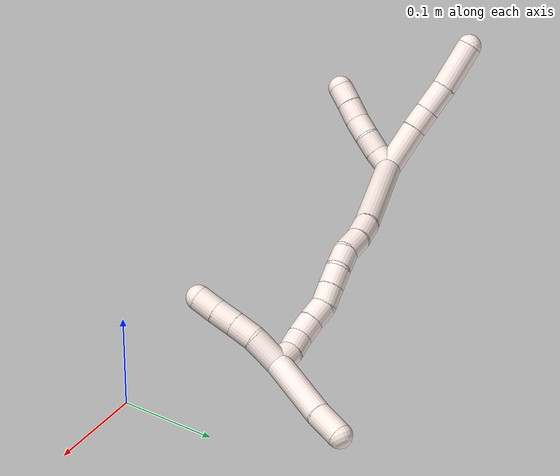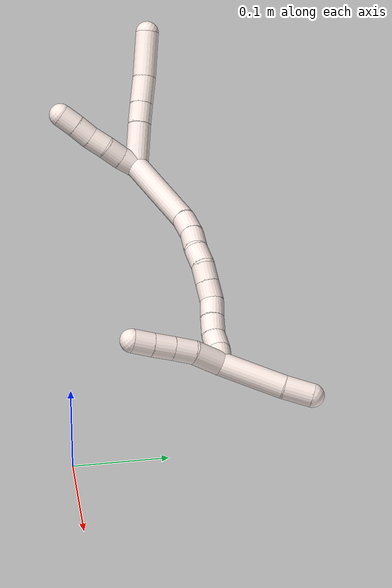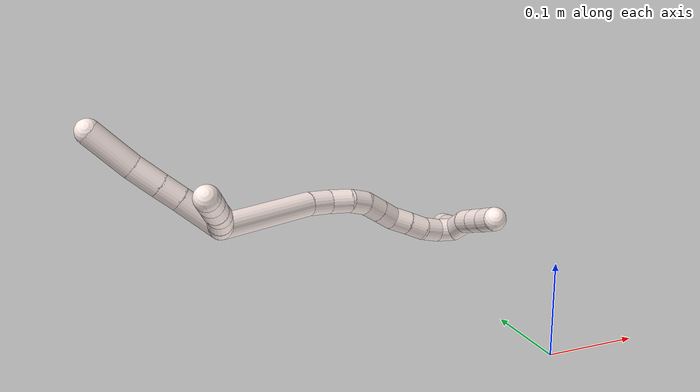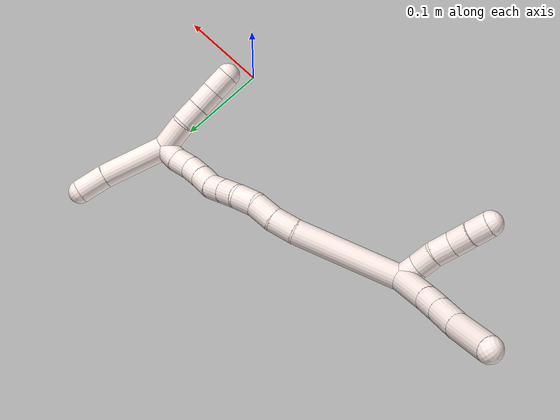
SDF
<sdf version="1.7">
 <world name="default">
  <model name="11">
   <static>0</static>
   <link name="11">
    <collision name="collision-cylinder-e_1_2_8">
     <pose>-0.011752 0.01612 0.012434 -0.913779 -0.523541 0.2619</pose>
     <geometry><cylinder><radius>0.0125</radius><length>0.047015</length></cylinder></geometry>
     <surface>
      <friction><ode><mu>1.16</mu><mu2>1.16</mu2><slip1>0</slip1><slip2>0</slip2></ode></friction>
      <contact><ode><kp>1e+06</kp><kd>1</kd><max_vel>0</max_vel><min_depth>0.001</min_depth></ode></contact>
     </surface>
    </collision>
    <visual name="visual-cylinder-e_1_2_8">
     <pose>-0.011752 0.01612 0.012434 -0.913779 -0.523541 0.2619</pose>
     <geometry><cylinder><radius>0.0125</radius><length>0.047015</length></cylinder></geometry>
     <material><ambient>1 0.933333 0.909804 1</ambient></material>
    </visual>
    <collision name="collision-cylinder-e_2_8_9">
     <pose>-0.02951 0.040106 0.030508 -0.948773 -0.55536 0.290674</pose>
     <geometry><cylinder><radius>0.0125</radius><length>0.02278</length></cylinder></geometry>
     <surface>
      <friction><ode><mu>1.16</mu><mu2>1.16</mu2><slip1>0</slip1><slip2>0</slip2></ode></friction>
      <contact><ode><kp>1e+06</kp><kd>1</kd><max_vel>0</max_vel><min_depth>0.001</min_depth></ode></contact>
     </surface>
    </collision>
    <visual name="visual-cylinder-e_2_8_9">
     <pose>-0.02951 0.040106 0.030508 -0.948773 -0.55536 0.290674</pose>
     <geometry><cylinder><radius>0.0125</radius><length>0.02278</length></cylinder></geometry>
     <material><ambient>1 0.933333 0.909804 1</ambient></material>
    </visual>
    <collision name="collision-cylinder-e_3_9_10">
     <pose>-0.043232 0.058602 0.043478 -0.967037 -0.538641 0.287874</pose>
     <geometry><cylinder><radius>0.0125</radius><length>0.030086</length></cylinder></geometry>
     <surface>
      <friction><ode><mu>1.16</mu><mu2>1.16</mu2><slip1>0</slip1><slip2>0</slip2></ode></friction>
      <contact><ode><kp>1e+06</kp><kd>1</kd><max_vel>0</max_vel><min_depth>0.001</min_depth></ode></contact>
     </surface>
    </collision>
    <visual name="visual-cylinder-e_3_9_10">
     <pose>-0.043232 0.058602 0.043478 -0.967037 -0.538641 0.287874</pose>
     <geometry><cylinder><radius>0.0125</radius><length>0.030086</length></cylinder></geometry>
     <material><ambient>1 0.933333 0.909804 1</ambient></material>
    </visual>
    <collision name="collision-cylinder-e_4_10_6">
     <pose>-0.062123 0.086945 0.064571 -0.910269 -0.46216 0.229287</pose>
     <geometry><cylinder><radius>0.0125</radius><length>0.050119</length></cylinder></geometry>
     <surface>
      <friction><ode><mu>1.16</mu><mu2>1.16</mu2><slip1>0</slip1><slip2>0</slip2></ode></friction>
      <contact><ode><kp>1e+06</kp><kd>1</kd><max_vel>0</max_vel><min_depth>0.001</min_depth></ode></contact>
     </surface>
    </collision>
    <visual name="visual-cylinder-e_4_10_6">
     <pose>-0.062123 0.086945 0.064571 -0.910269 -0.46216 0.229287</pose>
     <geometry><cylinder><radius>0.0125</radius><length>0.050119</length></cylinder></geometry>
     <material><ambient>1 0.933333 0.909804 1</ambient></material>
    </visual>
    <collision name="collision-cylinder-e_1_2_11">
     <pose>0.000265 -0.002247 0.009741 0.226703 0.02655 0.003023</pose>
     <geometry><cylinder><radius>0.0125</radius><length>0.02</length></cylinder></geometry>
     <surface>
      <friction><ode><mu>1.16</mu><mu2>1.16</mu2><slip1>0</slip1><slip2>0</slip2></ode></friction>
      <contact><ode><kp>1e+06</kp><kd>1</kd><max_vel>0</max_vel><min_depth>0.001</min_depth></ode></contact>
     </surface>
    </collision>
    <visual name="visual-cylinder-e_1_2_11">
     <pose>0.000265 -0.002247 0.009741 0.226703 0.02655 0.003023</pose>
     <geometry><cylinder><radius>0.0125</radius><length>0.02</length></cylinder></geometry>
     <material><ambient>1 0.933333 0.909804 1</ambient></material>
    </visual>
    <collision name="collision-cylinder-e_2_11_12">
     <pose>0.001098 -0.005495 0.029415 0.100482 0.056743 0.002854</pose>
     <geometry><cylinder><radius>0.0125</radius><length>0.02</length></cylinder></geometry>
     <surface>
      <friction><ode><mu>1.16</mu><mu2>1.16</mu2><slip1>0</slip1><slip2>0</slip2></ode></friction>
      <contact><ode><kp>1e+06</kp><kd>1</kd><max_vel>0</max_vel><min_depth>0.001</min_depth></ode></contact>
     </surface>
    </collision>
    <visual name="visual-cylinder-e_2_11_12">
     <pose>0.001098 -0.005495 0.029415 0.100482 0.056743 0.002854</pose>
     <geometry><cylinder><radius>0.0125</radius><length>0.02</length></cylinder></geometry>
     <material><ambient>1 0.933333 0.909804 1</ambient></material>
    </visual>
    <collision name="collision-cylinder-e_3_12_13">
     <pose>0.000626 -0.008312 0.049127 0.183558 -0.104127 -0.009592</pose>
     <geometry><cylinder><radius>0.0125</radius><length>0.02</length></cylinder></geometry>
     <surface>
      <friction><ode><mu>1.16</mu><mu2>1.16</mu2><slip1>0</slip1><slip2>0</slip2></ode></friction>
      <contact><ode><kp>1e+06</kp><kd>1</kd><max_vel>0</max_vel><min_depth>0.001</min_depth></ode></contact>
     </surface>
    </collision>
    <visual name="visual-cylinder-e_3_12_13">
     <pose>0.000626 -0.008312 0.049127 0.183558 -0.104127 -0.009592</pose>
     <geometry><cylinder><radius>0.0125</radius><length>0.02</length></cylinder></geometry>
     <material><ambient>1 0.933333 0.909804 1</ambient></material>
    </visual>
    <collision name="collision-cylinder-e_4_13_14">
     <pose>-0.001133 -0.010689 0.068864 0.056271 -0.071976 -0.002027</pose>
     <geometry><cylinder><radius>0.0125</radius><length>0.02</length></cylinder></geometry>
     <surface>
      <friction><ode><mu>1.16</mu><mu2>1.16</mu2><slip1>0</slip1><slip2>0</slip2></ode></friction>
      <contact><ode><kp>1e+06</kp><kd>1</kd><max_vel>0</max_vel><min_depth>0.001</min_depth></ode></contact>
     </surface>
    </collision>
    <visual name="visual-cylinder-e_4_13_14">
     <pose>-0.001133 -0.010689 0.068864 0.056271 -0.071976 -0.002027</pose>
     <geometry><cylinder><radius>0.0125</radius><length>0.02</length></cylinder></geometry>
     <material><ambient>1 0.933333 0.909804 1</ambient></material>
    </visual>
    <collision name="collision-cylinder-e_5_14_5">
     <pose>-0.002733 -0.01238 0.088719 0.113754 -0.088244 -0.005028</pose>
     <geometry><cylinder><radius>0.0125</radius><length>0.02</length></cylinder></geometry>
     <surface>
      <friction><ode><mu>1.16</mu><mu2>1.16</mu2><slip1>0</slip1><slip2>0</slip2></ode></friction>
      <contact><ode><kp>1e+06</kp><kd>1</kd><max_vel>0</max_vel><min_depth>0.001</min_depth></ode></contact>
     </surface>
    </collision>
    <visual name="visual-cylinder-e_5_14_5">
     <pose>-0.002733 -0.01238 0.088719 0.113754 -0.088244 -0.005028</pose>
     <geometry><cylinder><radius>0.0125</radius><length>0.02</length></cylinder></geometry>
     <material><ambient>1 0.933333 0.909804 1</ambient></material>
    </visual>
    <collision name="collision-cylinder-e_1_2_15">
     <pose>0.046483 0.004305 -0.028383 -2.99107 1.01754 -2.87283</pose>
     <geometry><cylinder><radius>0.0125</radius><length>0.109266</length></cylinder></geometry>
     <surface>
      <friction><ode><mu>1.16</mu><mu2>1.16</mu2><slip1>0</slip1><slip2>0</slip2></ode></friction>
      <contact><ode><kp>1e+06</kp><kd>1</kd><max_vel>0</max_vel><min_depth>0.001</min_depth></ode></contact>
     </surface>
    </collision>
    <visual name="visual-cylinder-e_1_2_15">
     <pose>0.046483 0.004305 -0.028383 -2.99107 1.01754 -2.87283</pose>
     <geometry><cylinder><radius>0.0125</radius><length>0.109266</length></cylinder></geometry>
     <material><ambient>1 0.933333 0.909804 1</ambient></material>
    </visual>
    <collision name="collision-cylinder-e_2_15_16">
     <pose>0.103708 0.007605 -0.062938 2.98031 1.0436 2.8623</pose>
     <geometry><cylinder><radius>0.0125</radius><length>0.024861</length></cylinder></geometry>
     <surface>
      <friction><ode><mu>1.16</mu><mu2>1.16</mu2><slip1>0</slip1><slip2>0</slip2></ode></friction>
      <contact><ode><kp>1e+06</kp><kd>1</kd><max_vel>0</max_vel><min_depth>0.001</min_depth></ode></contact>
     </surface>
    </collision>
    <visual name="visual-cylinder-e_2_15_16">
     <pose>0.103708 0.007605 -0.062938 2.98031 1.0436 2.8623</pose>
     <geometry><cylinder><radius>0.0125</radius><length>0.024861</length></cylinder></geometry>
     <material><ambient>1 0.933333 0.909804 1</ambient></material>
    </visual>
    <collision name="collision-cylinder-e_3_16_17">
     <pose>0.125358 0.004105 -0.07362 2.63606 1.1294 2.36732</pose>
     <geometry><cylinder><radius>0.0125</radius><length>0.024126</length></cylinder></geometry>
     <surface>
      <friction><ode><mu>1.16</mu><mu2>1.16</mu2><slip1>0</slip1><slip2>0</slip2></ode></friction>
      <contact><ode><kp>1e+06</kp><kd>1</kd><max_vel>0</max_vel><min_depth>0.001</min_depth></ode></contact>
     </surface>
    </collision>
    <visual name="visual-cylinder-e_3_16_17">
     <pose>0.125358 0.004105 -0.07362 2.63606 1.1294 2.36732</pose>
     <geometry><cylinder><radius>0.0125</radius><length>0.024126</length></cylinder></geometry>
     <material><ambient>1 0.933333 0.909804 1</ambient></material>
    </visual>
    <collision name="collision-cylinder-e_4_17_18">
     <pose>0.144468 -0.000708 -0.084814 2.80786 0.859091 2.43689</pose>
     <geometry><cylinder><radius>0.0125</radius><length>0.021666</length></cylinder></geometry>
     <surface>
      <friction><ode><mu>1.16</mu><mu2>1.16</mu2><slip1>0</slip1><slip2>0</slip2></ode></friction>
      <contact><ode><kp>1e+06</kp><kd>1</kd><max_vel>0</max_vel><min_depth>0.001</min_depth></ode></contact>
     </surface>
    </collision>
    <visual name="visual-cylinder-e_4_17_18">
     <pose>0.144468 -0.000708 -0.084814 2.80786 0.859091 2.43689</pose>
     <geometry><cylinder><radius>0.0125</radius><length>0.021666</length></cylinder></geometry>
     <material><ambient>1 0.933333 0.909804 1</ambient></material>
    </visual>
    <collision name="collision-cylinder-e_5_18_19">
     <pose>0.158462 -0.007409 -0.098382 2.57451 0.617152 1.66044</pose>
     <geometry><cylinder><radius>0.0125</radius><length>0.020015</length></cylinder></geometry>
     <surface>
      <friction><ode><mu>1.16</mu><mu2>1.16</mu2><slip1>0</slip1><slip2>0</slip2></ode></friction>
      <contact><ode><kp>1e+06</kp><kd>1</kd><max_vel>0</max_vel><min_depth>0.001</min_depth></ode></contact>
     </surface>
    </collision>
    <visual name="visual-cylinder-e_5_18_19">
     <pose>0.158462 -0.007409 -0.098382 2.57451 0.617152 1.66044</pose>
     <geometry><cylinder><radius>0.0125</radius><length>0.020015</length></cylinder></geometry>
     <material><ambient>1 0.933333 0.909804 1</ambient></material>
    </visual>
    <collision name="collision-cylinder-e_6_19_20">
     <pose>0.169955 -0.016169 -0.112243 2.58138 0.605564 1.65314</pose>
     <geometry><cylinder><radius>0.0125</radius><length>0.020033</length></cylinder></geometry>
     <surface>
      <friction><ode><mu>1.16</mu><mu2>1.16</mu2><slip1>0</slip1><slip2>0</slip2></ode></friction>
      <contact><ode><kp>1e+06</kp><kd>1</kd><max_vel>0</max_vel><min_depth>0.001</min_depth></ode></contact>
     </surface>
    </collision>
    <visual name="visual-cylinder-e_6_19_20">
     <pose>0.169955 -0.016169 -0.112243 2.58138 0.605564 1.65314</pose>
     <geometry><cylinder><radius>0.0125</radius><length>0.020033</length></cylinder></geometry>
     <material><ambient>1 0.933333 0.909804 1</ambient></material>
    </visual>
    <collision name="collision-cylinder-e_7_20_21">
     <pose>0.183035 -0.025597 -0.123709 2.29734 0.82918 1.5505</pose>
     <geometry><cylinder><radius>0.0125</radius><length>0.02001</length></cylinder></geometry>
     <surface>
      <friction><ode><mu>1.16</mu><mu2>1.16</mu2><slip1>0</slip1><slip2>0</slip2></ode></friction>
      <contact><ode><kp>1e+06</kp><kd>1</kd><max_vel>0</max_vel><min_depth>0.001</min_depth></ode></contact>
     </surface>
    </collision>
    <visual name="visual-cylinder-e_7_20_21">
     <pose>0.183035 -0.025597 -0.123709 2.29734 0.82918 1.5505</pose>
     <geometry><cylinder><radius>0.0125</radius><length>0.02001</length></cylinder></geometry>
     <material><ambient>1 0.933333 0.909804 1</ambient></material>
    </visual>
    <collision name="collision-cylinder-e_8_21_22">
     <pose>0.197592 -0.03554 -0.133161 2.36349 0.800354 1.60214</pose>
     <geometry><cylinder><radius>0.0125</radius><length>0.020011</length></cylinder></geometry>
     <surface>
      <friction><ode><mu>1.16</mu><mu2>1.16</mu2><slip1>0</slip1><slip2>0</slip2></ode></friction>
      <contact><ode><kp>1e+06</kp><kd>1</kd><max_vel>0</max_vel><min_depth>0.001</min_depth></ode></contact>
     </surface>
    </collision>
    <visual name="visual-cylinder-e_8_21_22">
     <pose>0.197592 -0.03554 -0.133161 2.36349 0.800354 1.60214</pose>
     <geometry><cylinder><radius>0.0125</radius><length>0.020011</length></cylinder></geometry>
     <material><ambient>1 0.933333 0.909804 1</ambient></material>
    </visual>
    <collision name="collision-cylinder-e_9_22_23">
     <pose>0.212739 -0.043012 -0.143591 2.70063 0.921703 2.29356</pose>
     <geometry><cylinder><radius>0.0125</radius><length>0.020001</length></cylinder></geometry>
     <surface>
      <friction><ode><mu>1.16</mu><mu2>1.16</mu2><slip1>0</slip1><slip2>0</slip2></ode></friction>
      <contact><ode><kp>1e+06</kp><kd>1</kd><max_vel>0</max_vel><min_depth>0.001</min_depth></ode></contact>
     </surface>
    </collision>
    <visual name="visual-cylinder-e_9_22_23">
     <pose>0.212739 -0.043012 -0.143591 2.70063 0.921703 2.29356</pose>
     <geometry><cylinder><radius>0.0125</radius><length>0.020001</length></cylinder></geometry>
     <material><ambient>1 0.933333 0.909804 1</ambient></material>
    </visual>
    <collision name="collision-cylinder-e_10_23_1">
     <pose>0.229858 -0.048165 -0.152176 2.45156 1.15484 2.13339</pose>
     <geometry><cylinder><radius>0.0125</radius><length>0.020011</length></cylinder></geometry>
     <surface>
      <friction><ode><mu>1.16</mu><mu2>1.16</mu2><slip1>0</slip1><slip2>0</slip2></ode></friction>
      <contact><ode><kp>1e+06</kp><kd>1</kd><max_vel>0</max_vel><min_depth>0.001</min_depth></ode></contact>
     </surface>
    </collision>
    <visual name="visual-cylinder-e_10_23_1">
     <pose>0.229858 -0.048165 -0.152176 2.45156 1.15484 2.13339</pose>
     <geometry><cylinder><radius>0.0125</radius><length>0.020011</length></cylinder></geometry>
     <material><ambient>1 0.933333 0.909804 1</ambient></material>
    </visual>
    <collision name="collision-cylinder-e_1_1_24">
     <pose>0.242948 -0.054475 -0.140037 0.240167 0.245631 0.029787</pose>
     <geometry><cylinder><radius>0.0125</radius><length>0.032387</length></cylinder></geometry>
     <surface>
      <friction><ode><mu>1.16</mu><mu2>1.16</mu2><slip1>0</slip1><slip2>0</slip2></ode></friction>
      <contact><ode><kp>1e+06</kp><kd>1</kd><max_vel>0</max_vel><min_depth>0.001</min_depth></ode></contact>
     </surface>
    </collision>
    <visual name="visual-cylinder-e_1_1_24">
     <pose>0.242948 -0.054475 -0.140037 0.240167 0.245631 0.029787</pose>
     <geometry><cylinder><radius>0.0125</radius><length>0.032387</length></cylinder></geometry>
     <material><ambient>1 0.933333 0.909804 1</ambient></material>
    </visual>
    <collision name="collision-cylinder-e_2_24_25">
     <pose>0.248944 -0.063359 -0.114722 0.47304 0.180165 0.043536</pose>
     <geometry><cylinder><radius>0.0125</radius><length>0.02297</length></cylinder></geometry>
     <surface>
      <friction><ode><mu>1.16</mu><mu2>1.16</mu2><slip1>0</slip1><slip2>0</slip2></ode></friction>
      <contact><ode><kp>1e+06</kp><kd>1</kd><max_vel>0</max_vel><min_depth>0.001</min_depth></ode></contact>
     </surface>
    </collision>
    <visual name="visual-cylinder-e_2_24_25">
     <pose>0.248944 -0.063359 -0.114722 0.47304 0.180165 0.043536</pose>
     <geometry><cylinder><radius>0.0125</radius><length>0.02297</length></cylinder></geometry>
     <material><ambient>1 0.933333 0.909804 1</ambient></material>
    </visual>
    <collision name="collision-cylinder-e_3_25_26">
     <pose>0.253177 -0.073694 -0.094972 0.491371 0.195342 0.049129</pose>
     <geometry><cylinder><radius>0.0125</radius><length>0.022411</length></cylinder></geometry>
     <surface>
      <friction><ode><mu>1.16</mu><mu2>1.16</mu2><slip1>0</slip1><slip2>0</slip2></ode></friction>
      <contact><ode><kp>1e+06</kp><kd>1</kd><max_vel>0</max_vel><min_depth>0.001</min_depth></ode></contact>
     </surface>
    </collision>
    <visual name="visual-cylinder-e_3_25_26">
     <pose>0.253177 -0.073694 -0.094972 0.491371 0.195342 0.049129</pose>
     <geometry><cylinder><radius>0.0125</radius><length>0.022411</length></cylinder></geometry>
     <material><ambient>1 0.933333 0.909804 1</ambient></material>
    </visual>
    <collision name="collision-cylinder-e_4_26_4">
     <pose>0.257369 -0.083779 -0.075508 0.464686 0.182438 0.043281</pose>
     <geometry><cylinder><radius>0.0125</radius><length>0.022231</length></cylinder></geometry>
     <surface>
      <friction><ode><mu>1.16</mu><mu2>1.16</mu2><slip1>0</slip1><slip2>0</slip2></ode></friction>
      <contact><ode><kp>1e+06</kp><kd>1</kd><max_vel>0</max_vel><min_depth>0.001</min_depth></ode></contact>
     </surface>
    </collision>
    <visual name="visual-cylinder-e_4_26_4">
     <pose>0.257369 -0.083779 -0.075508 0.464686 0.182438 0.043281</pose>
     <geometry><cylinder><radius>0.0125</radius><length>0.022231</length></cylinder></geometry>
     <material><ambient>1 0.933333 0.909804 1</ambient></material>
    </visual>
    <collision name="collision-cylinder-e_1_1_27">
     <pose>0.245549 -0.036725 -0.186358 -2.7178 0.189552 -0.832166</pose>
     <geometry><cylinder><radius>0.0125</radius><length>0.0694</length></cylinder></geometry>
     <surface>
      <friction><ode><mu>1.16</mu><mu2>1.16</mu2><slip1>0</slip1><slip2>0</slip2></ode></friction>
      <contact><ode><kp>1e+06</kp><kd>1</kd><max_vel>0</max_vel><min_depth>0.001</min_depth></ode></contact>
     </surface>
    </collision>
    <visual name="visual-cylinder-e_1_1_27">
     <pose>0.245549 -0.036725 -0.186358 -2.7178 0.189552 -0.832166</pose>
     <geometry><cylinder><radius>0.0125</radius><length>0.0694</length></cylinder></geometry>
     <material><ambient>1 0.933333 0.909804 1</ambient></material>
    </visual>
    <collision name="collision-cylinder-e_2_27_3">
     <pose>0.25329 -0.015935 -0.231086 -2.68123 0.078746 -0.333098</pose>
     <geometry><cylinder><radius>0.0125</radius><length>0.0306</length></cylinder></geometry>
     <surface>
      <friction><ode><mu>1.16</mu><mu2>1.16</mu2><slip1>0</slip1><slip2>0</slip2></ode></friction>
      <contact><ode><kp>1e+06</kp><kd>1</kd><max_vel>0</max_vel><min_depth>0.001</min_depth></ode></contact>
     </surface>
    </collision>
    <visual name="visual-cylinder-e_2_27_3">
     <pose>0.25329 -0.015935 -0.231086 -2.68123 0.078746 -0.333098</pose>
     <geometry><cylinder><radius>0.0125</radius><length>0.0306</length></cylinder></geometry>
     <material><ambient>1 0.933333 0.909804 1</ambient></material>
    </visual>
    <collision name="collision-sphere-3">
     <pose>0.254494 -0.009158 -0.244751 0 -0 0</pose>
     <geometry><sphere><radius>0.0125</radius></sphere></geometry>
     <surface>
      <friction><ode><mu>1.16</mu><mu2>1.16</mu2><slip1>0</slip1><slip2>0</slip2></ode></friction>
      <contact><ode><kp>1e+06</kp><kd>1</kd><max_vel>0</max_vel><min_depth>0.001</min_depth></ode></contact>
     </surface>
    </collision>
    <visual name="visual-sphere-3">
     <pose>0.254494 -0.009158 -0.244751 0 -0 0</pose>
     <geometry><sphere><radius>0.0125</radius></sphere></geometry>
     <material><ambient>1 0.933333 0.909804 1</ambient></material>
    </visual>
    <collision name="collision-sphere-27">
     <pose>0.252087 -0.022711 -0.217421 0 -0 0</pose>
     <geometry><sphere><radius>0.0125</radius></sphere></geometry>
     <surface>
      <friction><ode><mu>1.16</mu><mu2>1.16</mu2><slip1>0</slip1><slip2>0</slip2></ode></friction>
      <contact><ode><kp>1e+06</kp><kd>1</kd><max_vel>0</max_vel><min_depth>0.001</min_depth></ode></contact>
     </surface>
    </collision>
    <visual name="visual-sphere-27">
     <pose>0.252087 -0.022711 -0.217421 0 -0 0</pose>
     <geometry><sphere><radius>0.0125</radius></sphere></geometry>
     <material><ambient>1 0.933333 0.909804 1</ambient></material>
    </visual>
    <collision name="collision-sphere-4">
     <pose>0.259386 -0.088678 -0.065736 0 -0 0</pose>
     <geometry><sphere><radius>0.0125</radius></sphere></geometry>
     <surface>
      <friction><ode><mu>1.16</mu><mu2>1.16</mu2><slip1>0</slip1><slip2>0</slip2></ode></friction>
      <contact><ode><kp>1e+06</kp><kd>1</kd><max_vel>0</max_vel><min_depth>0.001</min_depth></ode></contact>
     </surface>
    </collision>
    <visual name="visual-sphere-4">
     <pose>0.259386 -0.088678 -0.065736 0 -0 0</pose>
     <geometry><sphere><radius>0.0125</radius></sphere></geometry>
     <material><ambient>1 0.933333 0.909804 1</ambient></material>
    </visual>
    <collision name="collision-sphere-26">
     <pose>0.255352 -0.07888 -0.08528 0 -0 0</pose>
     <geometry><sphere><radius>0.0125</radius></sphere></geometry>
     <surface>
      <friction><ode><mu>1.16</mu><mu2>1.16</mu2><slip1>0</slip1><slip2>0</slip2></ode></friction>
      <contact><ode><kp>1e+06</kp><kd>1</kd><max_vel>0</max_vel><min_depth>0.001</min_depth></ode></contact>
     </surface>
    </collision>
    <visual name="visual-sphere-26">
     <pose>0.255352 -0.07888 -0.08528 0 -0 0</pose>
     <geometry><sphere><radius>0.0125</radius></sphere></geometry>
     <material><ambient>1 0.933333 0.909804 1</ambient></material>
    </visual>
    <collision name="collision-sphere-25">
     <pose>0.251002 -0.068507 -0.104663 0 -0 0</pose>
     <geometry><sphere><radius>0.0125</radius></sphere></geometry>
     <surface>
      <friction><ode><mu>1.16</mu><mu2>1.16</mu2><slip1>0</slip1><slip2>0</slip2></ode></friction>
      <contact><ode><kp>1e+06</kp><kd>1</kd><max_vel>0</max_vel><min_depth>0.001</min_depth></ode></contact>
     </surface>
    </collision>
    <visual name="visual-sphere-25">
     <pose>0.251002 -0.068507 -0.104663 0 -0 0</pose>
     <geometry><sphere><radius>0.0125</radius></sphere></geometry>
     <material><ambient>1 0.933333 0.909804 1</ambient></material>
    </visual>
    <collision name="collision-sphere-24">
     <pose>0.246886 -0.058211 -0.12478 0 -0 0</pose>
     <geometry><sphere><radius>0.0125</radius></sphere></geometry>
     <surface>
      <friction><ode><mu>1.16</mu><mu2>1.16</mu2><slip1>0</slip1><slip2>0</slip2></ode></friction>
      <contact><ode><kp>1e+06</kp><kd>1</kd><max_vel>0</max_vel><min_depth>0.001</min_depth></ode></contact>
     </surface>
    </collision>
    <visual name="visual-sphere-24">
     <pose>0.246886 -0.058211 -0.12478 0 -0 0</pose>
     <geometry><sphere><radius>0.0125</radius></sphere></geometry>
     <material><ambient>1 0.933333 0.909804 1</ambient></material>
    </visual>
    <collision name="collision-sphere-1">
     <pose>0.23901 -0.050739 -0.155294 0 -0 0</pose>
     <geometry><sphere><radius>0.0125</radius></sphere></geometry>
     <surface>
      <friction><ode><mu>1.16</mu><mu2>1.16</mu2><slip1>0</slip1><slip2>0</slip2></ode></friction>
      <contact><ode><kp>1e+06</kp><kd>1</kd><max_vel>0</max_vel><min_depth>0.001</min_depth></ode></contact>
     </surface>
    </collision>
    <visual name="visual-sphere-1">
     <pose>0.23901 -0.050739 -0.155294 0 -0 0</pose>
     <geometry><sphere><radius>0.0125</radius></sphere></geometry>
     <material><ambient>1 0.933333 0.909804 1</ambient></material>
    </visual>
    <collision name="collision-sphere-23">
     <pose>0.220706 -0.045592 -0.149058 0 -0 0</pose>
     <geometry><sphere><radius>0.0125</radius></sphere></geometry>
     <surface>
      <friction><ode><mu>1.16</mu><mu2>1.16</mu2><slip1>0</slip1><slip2>0</slip2></ode></friction>
      <contact><ode><kp>1e+06</kp><kd>1</kd><max_vel>0</max_vel><min_depth>0.001</min_depth></ode></contact>
     </surface>
    </collision>
    <visual name="visual-sphere-23">
     <pose>0.220706 -0.045592 -0.149058 0 -0 0</pose>
     <geometry><sphere><radius>0.0125</radius></sphere></geometry>
     <material><ambient>1 0.933333 0.909804 1</ambient></material>
    </visual>
    <collision name="collision-sphere-22">
     <pose>0.204772 -0.040431 -0.138125 0 -0 0</pose>
     <geometry><sphere><radius>0.0125</radius></sphere></geometry>
     <surface>
      <friction><ode><mu>1.16</mu><mu2>1.16</mu2><slip1>0</slip1><slip2>0</slip2></ode></friction>
      <contact><ode><kp>1e+06</kp><kd>1</kd><max_vel>0</max_vel><min_depth>0.001</min_depth></ode></contact>
     </surface>
    </collision>
    <visual name="visual-sphere-22">
     <pose>0.204772 -0.040431 -0.138125 0 -0 0</pose>
     <geometry><sphere><radius>0.0125</radius></sphere></geometry>
     <material><ambient>1 0.933333 0.909804 1</ambient></material>
    </visual>
    <collision name="collision-sphere-21">
     <pose>0.190412 -0.030649 -0.128198 0 -0 0</pose>
     <geometry><sphere><radius>0.0125</radius></sphere></geometry>
     <surface>
      <friction><ode><mu>1.16</mu><mu2>1.16</mu2><slip1>0</slip1><slip2>0</slip2></ode></friction>
      <contact><ode><kp>1e+06</kp><kd>1</kd><max_vel>0</max_vel><min_depth>0.001</min_depth></ode></contact>
     </surface>
    </collision>
    <visual name="visual-sphere-21">
     <pose>0.190412 -0.030649 -0.128198 0 -0 0</pose>
     <geometry><sphere><radius>0.0125</radius></sphere></geometry>
     <material><ambient>1 0.933333 0.909804 1</ambient></material>
    </visual>
    <collision name="collision-sphere-11">
     <pose>0.000531 -0.004494 0.019481 0 -0 0</pose>
     <geometry><sphere><radius>0.0125</radius></sphere></geometry>
     <surface>
      <friction><ode><mu>1.16</mu><mu2>1.16</mu2><slip1>0</slip1><slip2>0</slip2></ode></friction>
      <contact><ode><kp>1e+06</kp><kd>1</kd><max_vel>0</max_vel><min_depth>0.001</min_depth></ode></contact>
     </surface>
    </collision>
    <visual name="visual-sphere-11">
     <pose>0.000531 -0.004494 0.019481 0 -0 0</pose>
     <geometry><sphere><radius>0.0125</radius></sphere></geometry>
     <material><ambient>1 0.933333 0.909804 1</ambient></material>
    </visual>
    <collision name="collision-sphere-6">
     <pose>-0.073296 0.104657 0.078333 0 -0 0</pose>
     <geometry><sphere><radius>0.0125</radius></sphere></geometry>
     <surface>
      <friction><ode><mu>1.16</mu><mu2>1.16</mu2><slip1>0</slip1><slip2>0</slip2></ode></friction>
      <contact><ode><kp>1e+06</kp><kd>1</kd><max_vel>0</max_vel><min_depth>0.001</min_depth></ode></contact>
     </surface>
    </collision>
    <visual name="visual-sphere-6">
     <pose>-0.073296 0.104657 0.078333 0 -0 0</pose>
     <geometry><sphere><radius>0.0125</radius></sphere></geometry>
     <material><ambient>1 0.933333 0.909804 1</ambient></material>
    </visual>
    <collision name="collision-sphere-10">
     <pose>-0.050949 0.069232 0.05081 0 -0 0</pose>
     <geometry><sphere><radius>0.0125</radius></sphere></geometry>
     <surface>
      <friction><ode><mu>1.16</mu><mu2>1.16</mu2><slip1>0</slip1><slip2>0</slip2></ode></friction>
      <contact><ode><kp>1e+06</kp><kd>1</kd><max_vel>0</max_vel><min_depth>0.001</min_depth></ode></contact>
     </surface>
    </collision>
    <visual name="visual-sphere-10">
     <pose>-0.050949 0.069232 0.05081 0 -0 0</pose>
     <geometry><sphere><radius>0.0125</radius></sphere></geometry>
     <material><ambient>1 0.933333 0.909804 1</ambient></material>
    </visual>
    <collision name="collision-sphere-9">
     <pose>-0.035516 0.047972 0.036147 0 -0 0</pose>
     <geometry><sphere><radius>0.0125</radius></sphere></geometry>
     <surface>
      <friction><ode><mu>1.16</mu><mu2>1.16</mu2><slip1>0</slip1><slip2>0</slip2></ode></friction>
      <contact><ode><kp>1e+06</kp><kd>1</kd><max_vel>0</max_vel><min_depth>0.001</min_depth></ode></contact>
     </surface>
    </collision>
    <visual name="visual-sphere-9">
     <pose>-0.035516 0.047972 0.036147 0 -0 0</pose>
     <geometry><sphere><radius>0.0125</radius></sphere></geometry>
     <material><ambient>1 0.933333 0.909804 1</ambient></material>
    </visual>
    <collision name="collision-sphere-2">
     <geometry><sphere><radius>0.0125</radius></sphere></geometry>
     <surface>
      <friction><ode><mu>1.16</mu><mu2>1.16</mu2><slip1>0</slip1><slip2>0</slip2></ode></friction>
      <contact><ode><kp>1e+06</kp><kd>1</kd><max_vel>0</max_vel><min_depth>0.001</min_depth></ode></contact>
     </surface>
    </collision>
    <visual name="visual-sphere-2">
     <geometry><sphere><radius>0.0125</radius></sphere></geometry>
     <material><ambient>1 0.933333 0.909804 1</ambient></material>
    </visual>
    <collision name="collision-sphere-19">
     <pose>0.164254 -0.011794 -0.105266 0 -0 0</pose>
     <geometry><sphere><radius>0.0125</radius></sphere></geometry>
     <surface>
      <friction><ode><mu>1.16</mu><mu2>1.16</mu2><slip1>0</slip1><slip2>0</slip2></ode></friction>
      <contact><ode><kp>1e+06</kp><kd>1</kd><max_vel>0</max_vel><min_depth>0.001</min_depth></ode></contact>
     </surface>
    </collision>
    <visual name="visual-sphere-19">
     <pose>0.164254 -0.011794 -0.105266 0 -0 0</pose>
     <geometry><sphere><radius>0.0125</radius></sphere></geometry>
     <material><ambient>1 0.933333 0.909804 1</ambient></material>
    </visual>
    <collision name="collision-sphere-8">
     <pose>-0.023505 0.032241 0.024868 0 -0 0</pose>
     <geometry><sphere><radius>0.0125</radius></sphere></geometry>
     <surface>
      <friction><ode><mu>1.16</mu><mu2>1.16</mu2><slip1>0</slip1><slip2>0</slip2></ode></friction>
      <contact><ode><kp>1e+06</kp><kd>1</kd><max_vel>0</max_vel><min_depth>0.001</min_depth></ode></contact>
     </surface>
    </collision>
    <visual name="visual-sphere-8">
     <pose>-0.023505 0.032241 0.024868 0 -0 0</pose>
     <geometry><sphere><radius>0.0125</radius></sphere></geometry>
     <material><ambient>1 0.933333 0.909804 1</ambient></material>
    </visual>
    <collision name="collision-sphere-12">
     <pose>0.001665 -0.006497 0.039348 0 -0 0</pose>
     <geometry><sphere><radius>0.0125</radius></sphere></geometry>
     <surface>
      <friction><ode><mu>1.16</mu><mu2>1.16</mu2><slip1>0</slip1><slip2>0</slip2></ode></friction>
      <contact><ode><kp>1e+06</kp><kd>1</kd><max_vel>0</max_vel><min_depth>0.001</min_depth></ode></contact>
     </surface>
    </collision>
    <visual name="visual-sphere-12">
     <pose>0.001665 -0.006497 0.039348 0 -0 0</pose>
     <geometry><sphere><radius>0.0125</radius></sphere></geometry>
     <material><ambient>1 0.933333 0.909804 1</ambient></material>
    </visual>
    <collision name="collision-sphere-13">
     <pose>-0.000414 -0.010128 0.058906 0 -0 0</pose>
     <geometry><sphere><radius>0.0125</radius></sphere></geometry>
     <surface>
      <friction><ode><mu>1.16</mu><mu2>1.16</mu2><slip1>0</slip1><slip2>0</slip2></ode></friction>
      <contact><ode><kp>1e+06</kp><kd>1</kd><max_vel>0</max_vel><min_depth>0.001</min_depth></ode></contact>
     </surface>
    </collision>
    <visual name="visual-sphere-13">
     <pose>-0.000414 -0.010128 0.058906 0 -0 0</pose>
     <geometry><sphere><radius>0.0125</radius></sphere></geometry>
     <material><ambient>1 0.933333 0.909804 1</ambient></material>
    </visual>
    <collision name="collision-sphere-14">
     <pose>-0.001852 -0.011249 0.078823 0 -0 0</pose>
     <geometry><sphere><radius>0.0125</radius></sphere></geometry>
     <surface>
      <friction><ode><mu>1.16</mu><mu2>1.16</mu2><slip1>0</slip1><slip2>0</slip2></ode></friction>
      <contact><ode><kp>1e+06</kp><kd>1</kd><max_vel>0</max_vel><min_depth>0.001</min_depth></ode></contact>
     </surface>
    </collision>
    <visual name="visual-sphere-14">
     <pose>-0.001852 -0.011249 0.078823 0 -0 0</pose>
     <geometry><sphere><radius>0.0125</radius></sphere></geometry>
     <material><ambient>1 0.933333 0.909804 1</ambient></material>
    </visual>
    <collision name="collision-sphere-5">
     <pose>-0.003614 -0.013511 0.098616 0 -0 0</pose>
     <geometry><sphere><radius>0.0125</radius></sphere></geometry>
     <surface>
      <friction><ode><mu>1.16</mu><mu2>1.16</mu2><slip1>0</slip1><slip2>0</slip2></ode></friction>
      <contact><ode><kp>1e+06</kp><kd>1</kd><max_vel>0</max_vel><min_depth>0.001</min_depth></ode></contact>
     </surface>
    </collision>
    <visual name="visual-sphere-5">
     <pose>-0.003614 -0.013511 0.098616 0 -0 0</pose>
     <geometry><sphere><radius>0.0125</radius></sphere></geometry>
     <material><ambient>1 0.933333 0.909804 1</ambient></material>
    </visual>
    <collision name="collision-sphere-15">
     <pose>0.092966 0.00861 -0.056766 0 -0 0</pose>
     <geometry><sphere><radius>0.0125</radius></sphere></geometry>
     <surface>
      <friction><ode><mu>1.16</mu><mu2>1.16</mu2><slip1>0</slip1><slip2>0</slip2></ode></friction>
      <contact><ode><kp>1e+06</kp><kd>1</kd><max_vel>0</max_vel><min_depth>0.001</min_depth></ode></contact>
     </surface>
    </collision>
    <visual name="visual-sphere-15">
     <pose>0.092966 0.00861 -0.056766 0 -0 0</pose>
     <geometry><sphere><radius>0.0125</radius></sphere></geometry>
     <material><ambient>1 0.933333 0.909804 1</ambient></material>
    </visual>
    <collision name="collision-sphere-16">
     <pose>0.114451 0.006601 -0.069111 0 -0 0</pose>
     <geometry><sphere><radius>0.0125</radius></sphere></geometry>
     <surface>
      <friction><ode><mu>1.16</mu><mu2>1.16</mu2><slip1>0</slip1><slip2>0</slip2></ode></friction>
      <contact><ode><kp>1e+06</kp><kd>1</kd><max_vel>0</max_vel><min_depth>0.001</min_depth></ode></contact>
     </surface>
    </collision>
    <visual name="visual-sphere-16">
     <pose>0.114451 0.006601 -0.069111 0 -0 0</pose>
     <geometry><sphere><radius>0.0125</radius></sphere></geometry>
     <material><ambient>1 0.933333 0.909804 1</ambient></material>
    </visual>
    <collision name="collision-sphere-17">
     <pose>0.136265 0.00161 -0.078129 0 -0 0</pose>
     <geometry><sphere><radius>0.0125</radius></sphere></geometry>
     <surface>
      <friction><ode><mu>1.16</mu><mu2>1.16</mu2><slip1>0</slip1><slip2>0</slip2></ode></friction>
      <contact><ode><kp>1e+06</kp><kd>1</kd><max_vel>0</max_vel><min_depth>0.001</min_depth></ode></contact>
     </surface>
    </collision>
    <visual name="visual-sphere-17">
     <pose>0.136265 0.00161 -0.078129 0 -0 0</pose>
     <geometry><sphere><radius>0.0125</radius></sphere></geometry>
     <material><ambient>1 0.933333 0.909804 1</ambient></material>
    </visual>
    <collision name="collision-sphere-18">
     <pose>0.152671 -0.003025 -0.091498 0 -0 0</pose>
     <geometry><sphere><radius>0.0125</radius></sphere></geometry>
     <surface>
      <friction><ode><mu>1.16</mu><mu2>1.16</mu2><slip1>0</slip1><slip2>0</slip2></ode></friction>
      <contact><ode><kp>1e+06</kp><kd>1</kd><max_vel>0</max_vel><min_depth>0.001</min_depth></ode></contact>
     </surface>
    </collision>
    <visual name="visual-sphere-18">
     <pose>0.152671 -0.003025 -0.091498 0 -0 0</pose>
     <geometry><sphere><radius>0.0125</radius></sphere></geometry>
     <material><ambient>1 0.933333 0.909804 1</ambient></material>
    </visual>
    <collision name="collision-sphere-20">
     <pose>0.175657 -0.020545 -0.119219 0 -0 0</pose>
     <geometry><sphere><radius>0.0125</radius></sphere></geometry>
     <surface>
      <friction><ode><mu>1.16</mu><mu2>1.16</mu2><slip1>0</slip1><slip2>0</slip2></ode></friction>
      <contact><ode><kp>1e+06</kp><kd>1</kd><max_vel>0</max_vel><min_depth>0.001</min_depth></ode></contact>
     </surface>
    </collision>
    <visual name="visual-sphere-20">
     <pose>0.175657 -0.020545 -0.119219 0 -0 0</pose>
     <geometry><sphere><radius>0.0125</radius></sphere></geometry>
     <material><ambient>1 0.933333 0.909804 1</ambient></material>
    </visual>
    <inertial>
     <pose>0.107942 -0.007382 -0.058394 0 -0 0</pose>
     <mass>0.75</mass>
     <inertia>
      <ixx>-7e-06</ixx>
      <ixy>0</ixy>
      <ixz>0</ixz>
      <iyy>0.000116</iyy>
      <iyz>0</iyz>
      <izz>-0.000134</izz>
     </inertia>
    </inertial>
   </link>
   <pose>-0.311597 0.107428 0.14872 0.809231 -0.341095 -0.097075</pose>
  </model>
 </world>
</sdf>
